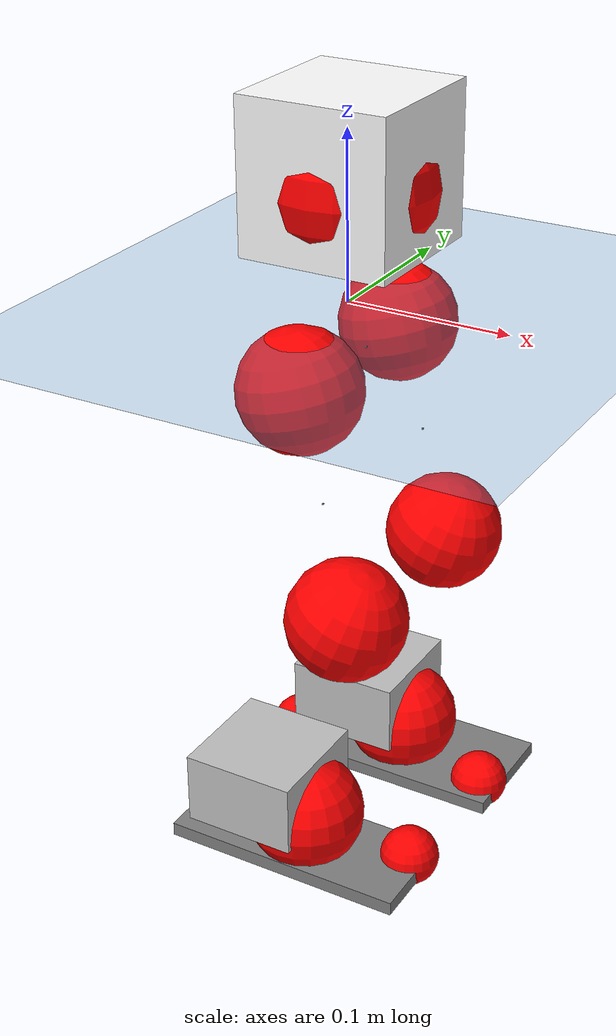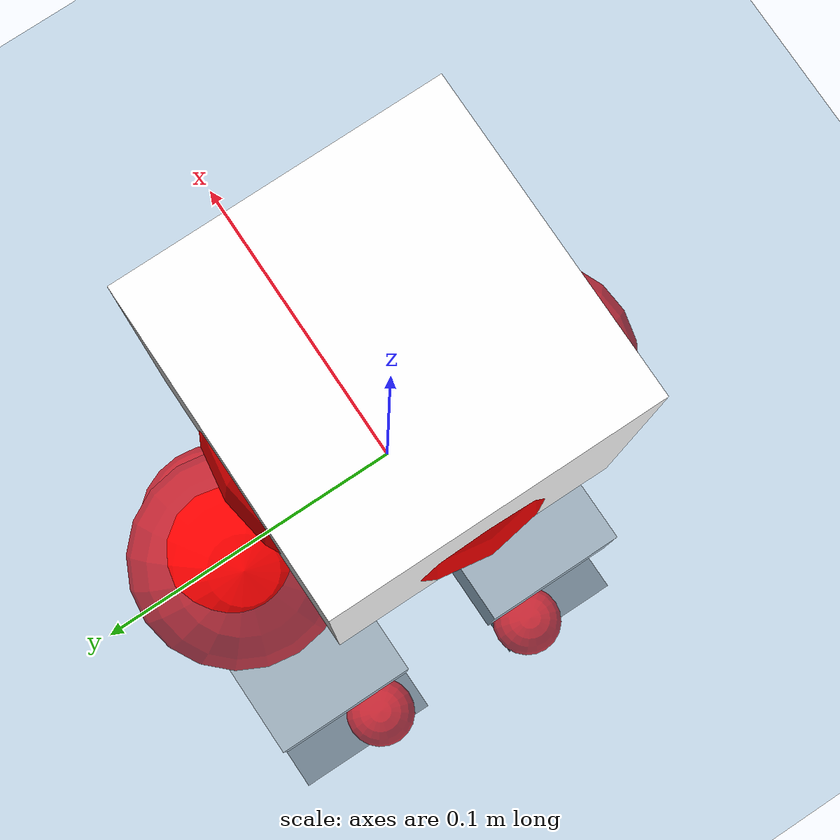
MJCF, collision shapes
<mujoco model="pi_12dof_release_v1">
  <compiler angle="radian" assetdir="assets" balanceinertia="true" inertiafromgeom="false"/>

  <option timestep="0.005" density="1.2" viscosity="2e-05"/>

  <size nkey="1"/>

  <visual>
    <quality shadowsize="8192"/>
    <map shadowclip="0.5"/>
  </visual>

  <default>
    <default class="/">
      <joint armature="0.01" damping="0.01" frictionloss="0.01"/>
      <geom contype="0" conaffinity="0" group="1" solref="-1000 -80"/>
      <site size="0.01 0.005 0.005" group="5"/>
      <general forcelimited="true" biastype="affine" gainprm="20" biasprm="0 -20 -0.5"/>
      <default class="foot">
        <geom size="0.0845 0.036 0.005" type="box" condim="6" group="4" priority="1" friction="0.9 0.2 0.2" solimp="0.015 1 0.005"/>
      </default>
      <default class="reward_collision_sphere">
        <geom group="5" rgba="1 0 0 1"/>
      </default>
    </default>
  </default>

  <asset>
    <texture type="skybox" colorspace="auto" name="//unnamed_texture_0" builtin="gradient" rgb1="0.95 0.95 0.95" rgb2="0.95 0.95 0.95" width="100" height="600"/>
    <texture type="2d" colorspace="auto" name="texplane" builtin="checker" rgb1="0.345 0.575 0.748" rgb2="0.345 0.575 0.748" markrgb="1 1 1" width="512" height="512"/>
    <material name="MatPlane" class="/" texture="texplane" texuniform="true" texrepeat="2 2" specular="0.9"/>
    <mesh name="baselink_1" class="/" file="baselink_1.STL"/>
    <mesh name="r_hip_pitch_link" class="/" file="r_hip_pitch_link.STL"/>
    <mesh name="r_hip_roll_link" class="/" file="r_hip_roll_link.STL"/>
    <mesh name="r_thigh_link" class="/" file="r_thigh_link.STL"/>
    <mesh name="r_calf_link" class="/" file="r_calf_link.STL"/>
    <mesh name="r_ankle_pitch_link" class="/" file="r_ankle_pitch_link.STL"/>
    <mesh name="r_ankle_roll_link" class="/" file="r_ankle_roll_link.STL"/>
    <mesh name="l_hip_pitch_link" class="/" file="l_hip_pitch_link.STL"/>
    <mesh name="l_hip_roll_link" class="/" file="l_hip_roll_link.STL"/>
    <mesh name="l_thigh_link" class="/" file="l_thigh_link.STL"/>
    <mesh name="l_calf_link" class="/" file="l_calf_link.STL"/>
    <mesh name="l_ankle_pitch_link" class="/" file="l_ankle_pitch_link.STL"/>
    <mesh name="l_ankle_roll_link" class="/" file="l_ankle_roll_link.STL"/>
  </asset>

  <worldbody>
    <geom name="floor" class="/" size="100 100 0.125" type="plane" group="0" material="MatPlane"/>
    <light name="toplight_shadow" class="/" pos="0 0 5" dir="0.0990148 0.0990148 -0.990148" type="directional" ambient="0.04 0.04 0.04" diffuse="0.55 0.55 0.55" specular="0.12 0.12 0.12"/>
    <light name="toplight_fill" class="/" pos="0 0 5" dir="0.0990148 0.0990148 -0.990148" type="directional" castshadow="false" ambient="0.04 0.04 0.04" diffuse="0.3 0.3 0.3" specular="0.08 0.08 0.08"/>
    <body name="trunk" pos="0.00260801 -0.000528753 0.000120743" quat="0.999999 -0.00115007 0.000224087 0.000419652">
      <inertial pos="-0.000325678 -0.00116571 0.0394289" quat="0.694637 0.0127768 0.0103706 0.719172" mass="1.52367" diaginertia="0.00918891 0.00201995 0.0035933"/>
      <joint name="//unnamed_joint_0" type="free"/>
      <geom name="//unnamed_geom_1" class="/" type="mesh" density="0" rgba="1 1 1 1" mesh="baselink_1"/>
      <geom name="//unnamed_geom_2" class="/" size="0.0451019 0.0451019 0.0451019" pos="0 0 0.0779531" type="box" rgba="1 1 1 1"/>
      <geom name="//unnamed_geom_3" class="reward_collision_sphere" size="0.0496121" pos="0 0 0.068209"/>
      <site name="imu" class="/" pos="-0.00225382 0.00191584 0.0120472" size="0.00902039"/>
      <camera name="track" class="/" pos="0 -1.48538 0" quat="0.707107 0.707107 0 0" mode="trackcom"/>
      <camera name="ego_camera" class="/" pos="0.0741761 0 0.175394" quat="-0.5 -0.5 0.5 0.5"/>
      <body name="r_hip_pitch_link" pos="-0.000165298 -0.0158813 -0.0320796" quat="0.992225 0.000162033 -0.12446 -0.000134857">
        <inertial pos="4.01486e-05 -0.0434855 -0.000153986" quat="-0.018713 0.70538 -0.0273281 0.708055" mass="0.268851" diaginertia="0.000104836 2.19537e-05 7.28637e-05"/>
        <joint name="r_hip_pitch_joint" class="/" pos="0 0 0" axis="0.00288246 -0.999978 0.0059236" range="-1.75034 1.24396" armature="0.00939422" damping="0.0232715" frictionloss="0.00975313"/>
        <geom name="//unnamed_geom_4" class="/" type="mesh" density="0" rgba="0.75294 0.75294 0.75294 1" mesh="r_hip_pitch_link"/>
        <geom name="//unnamed_geom_5" class="/" size="0.000451019 0.000451019 0.000451019" type="box" rgba="0.75294 0.75294 0.75294 1"/>
        <body name="r_hip_roll_link" pos="0.000576814 -0.0412611 0.000875117" quat="0.999999 0.000218307 -1.46682e-05 0.00100993">
          <inertial pos="0.000499547 -0.00128931 -0.0622088" quat="0.705938 -0.0794445 -0.0823725 0.698967" mass="0.277627" diaginertia="0.000310114 6.20096e-05 0.000114218"/>
          <joint name="r_hip_roll_joint" class="/" pos="0 0 0" axis="-0.999966 0.00110193 0.00812789" stiffness="0.00220435" range="-0.100118 0.466746" armature="0.00927717" damping="0" frictionloss="0.0099671"/>
          <geom name="//unnamed_geom_6" class="/" type="mesh" density="0" rgba="0.75294 0.75294 0.75294 1" mesh="r_hip_roll_link"/>
          <geom name="//unnamed_geom_7" class="/" size="0.000451019 0.000451019 0.000451019" type="box" rgba="0.75294 0.75294 0.75294 1"/>
          <geom name="//unnamed_geom_8" class="reward_collision_sphere" size="0.0360815"/>
          <body name="r_thigh_link" pos="-0.00174647 -0.0018296 -0.0668835" quat="1 -9.1019e-05 5.86586e-05 0.000389549">
            <inertial pos="-0.00165323 0.00104563 -0.0449978" quat="0.737032 0.67585 -0.00269556 0.00181922" mass="0.0826332" diaginertia="0.000121041 2.23683e-05 5.18633e-05"/>
            <joint name="r_thigh_joint" class="/" pos="0 0 0" axis="0.00219989 0.000192718 -0.999998" range="-0.339585 0.606863" armature="0.00876522" damping="2.6345e-05" frictionloss="0.00784514"/>
            <geom name="//unnamed_geom_9" class="/" type="mesh" density="0" rgba="0.75294 0.75294 0.75294 1" mesh="r_thigh_link"/>
            <geom name="//unnamed_geom_10" class="/" size="0.000451019 0.000451019 0.000451019" type="box" rgba="0.75294 0.75294 0.75294 1"/>
            <body name="r_calf_link" pos="-0.00169043 -0.00192576 -0.0712178" quat="0.947369 0.000102662 0.320144 -0.000177815">
              <inertial pos="-0.000426697 -0.00299809 -0.0676673" quat="0.999988 0.00360213 -0.000320829 -0.00341281" mass="0.591287" diaginertia="0.00324133 0.000785015 0.000150357"/>
              <joint name="r_calf_joint" class="/" pos="0 0 0" axis="-0.00229576 -0.999964 -0.00818094" range="-1.59871 0.644335" armature="0.00920606" damping="0.00521514" frictionloss="0.00980214"/>
              <geom name="//unnamed_geom_11" class="/" type="mesh" density="0" rgba="0.75294 0.75294 0.75294 1" mesh="r_calf_link"/>
              <geom name="//unnamed_geom_12" class="/" size="0.000451019 0.000451019 0.000451019" type="box" rgba="0.75294 0.75294 0.75294 1"/>
              <geom name="//unnamed_geom_13" class="reward_collision_sphere" size="0.0360815"/>
              <body name="r_ankle_pitch_link" pos="2.5754e-05 -0.00208289 -0.136914" quat="0.980077 0.00020428 -0.198617 -0.000139323">
                <inertial pos="0.00518345 0.000941354 -0.000559025" quat="-0.0022063 0.707206 0.000991957 0.707003" mass="0.130634" diaginertia="0.000289899 5.07401e-05 0.000108057"/>
                <joint name="r_ankle_pitch_joint" class="/" pos="0 0 0" axis="0.0032796 -0.999933 0.011096" range="-1.30344 0.499402" armature="0.00923992" damping="0" frictionloss="0.00926388"/>
                <geom name="//unnamed_geom_14" class="/" type="mesh" density="0" rgba="0.75294 0.75294 0.75294 1" mesh="r_ankle_pitch_link"/>
                <geom name="//unnamed_geom_15" class="/" size="0.0351795 0.0360815 0.022551" type="box" rgba="0.75294 0.75294 0.75294 1"/>
                <body name="r_ankle_roll_link" pos="0.0746715 0.00115387 0.000609297" quat="1 -6.4717e-05 3.97888e-06 2.43905e-05">
                  <inertial pos="-0.0233167 0.000696812 -0.0145002" quat="0.550133 0.435394 0.436661 0.563128" mass="0.377773" diaginertia="0.001069 0.000232447 0.000243707"/>
                  <joint name="r_ankle_roll_joint" class="/" pos="0 0 0" axis="-0.999904 -0.0131645 0.00432687" range="-0.199829 0.162921" armature="0.0101522" damping="0.0120728" frictionloss="0.00917339"/>
                  <geom name="//unnamed_geom_16" class="/" type="mesh" density="0" rgba="0.75294 0.75294 0.75294 1" mesh="r_ankle_roll_link"/>
                  <geom name="//unnamed_geom_17" class="/" type="mesh" rgba="0.75294 0.75294 0.75294 1" mesh="r_ankle_roll_link"/>
                  <geom name="right_foot" class="foot" size="0.0766347 0.0308876 0.00434181" pos="-0.0504397 0 -0.0428742"/>
                  <geom name="//unnamed_geom_19" class="reward_collision_sphere" size="0.0360815" pos="-0.0494507 0 -0.0194883"/>
                  <geom name="//unnamed_geom_20" class="reward_collision_sphere" size="0.0180408" pos="0.0148352 0.0148538 -0.0389765"/>
                  <geom name="//unnamed_geom_21" class="reward_collision_sphere" size="0.0180408" pos="-0.118682 0.0148538 -0.0389765"/>
                  <site name="right_foot" class="foot" pos="-0.0504397 0 -0.0428742" size="0.00902039"/>
                </body>
              </body>
            </body>
          </body>
        </body>
      </body>
      <body name="l_hip_pitch_link" pos="-0.000100895 0.0171261 -0.0332112" quat="0.992214 -3.87741e-05 -0.124542 0.000198722">
        <inertial pos="0.000131471 0.0424366 -0.00167625" quat="-0.0462655 0.706079 0.0399782 0.705488" mass="0.291767" diaginertia="0.000120683 2.34364e-05 9.01507e-05"/>
        <joint name="l_hip_pitch_joint" class="/" pos="0 0 0" axis="-0.0124293 0.999911 -0.00488788" range="-1.26421 1.7566" armature="0.00893559" damping="0.00949265" frictionloss="0.00910197"/>
        <geom name="//unnamed_geom_22" class="/" type="mesh" density="0" rgba="0.75294 0.75294 0.75294 1" mesh="l_hip_pitch_link"/>
        <geom name="//unnamed_geom_23" class="/" size="0.000451019 0.000451019 0.000451019" type="box" rgba="0.75294 0.75294 0.75294 1"/>
        <body name="l_hip_roll_link" pos="0.000537176 0.0394197 0.0026706" quat="1 -8.71471e-06 5.46865e-06 1.94554e-05">
          <inertial pos="-0.00113122 -7.29688e-05 -0.0601733" quat="0.698663 -0.0788799 -0.0760493 0.707011" mass="0.290422" diaginertia="0.000313053 6.1491e-05 0.000112948"/>
          <joint name="l_hip_roll_joint" class="/" pos="0 0 0" axis="-0.999995 0.00122442 0.00280253" range="-0.499527 0.15481" armature="0.0092407" damping="0.00410893" frictionloss="0.00941372"/>
          <geom name="//unnamed_geom_24" class="/" type="mesh" density="0" rgba="0.75294 0.75294 0.75294 1" mesh="l_hip_roll_link"/>
          <geom name="//unnamed_geom_25" class="/" size="0.000451019 0.000451019 0.000451019" type="box" rgba="0.75294 0.75294 0.75294 1"/>
          <geom name="//unnamed_geom_26" class="reward_collision_sphere" size="0.0360815"/>
          <body name="l_thigh_link" pos="0.000169133 0.000185655 -0.069737" quat="1 7.37484e-05 0.000301252 -0.000103214">
            <inertial pos="0.00127205 0.00117876 -0.0463703" quat="0.674806 0.737995 -0.00039741 -0.000954273" mass="0.0817457" diaginertia="0.000116313 2.12878e-05 4.86515e-05"/>
            <joint name="l_thigh_joint" class="/" pos="0 0 0" axis="-0.00246519 -0.000796657 -0.999997" range="-0.592901 0.32483" armature="0.00905944" damping="0" frictionloss="0.00912487"/>
            <geom name="//unnamed_geom_27" class="/" type="mesh" density="0" rgba="0.75294 0.75294 0.75294 1" mesh="l_thigh_link"/>
            <geom name="//unnamed_geom_28" class="/" size="0.000451019 0.000451019 0.000451019" type="box" rgba="0.75294 0.75294 0.75294 1"/>
            <body name="l_calf_link" pos="-0.000552727 0.000142237 -0.0675026" quat="0.94805 0.000337201 0.318121 7.9382e-07">
              <inertial pos="0.00295584 0.00359682 -0.0707818" quat="0.99995 0.00549572 0.0062836 0.00558983" mass="0.597335" diaginertia="0.00334234 0.000788937 0.000152884"/>
              <joint name="l_calf_joint" class="/" pos="0 0 0" axis="0.000412858 0.999998 0.001686" stiffness="0.000632592" range="-0.645729 1.64054" armature="0.00859729" damping="0.00924762" frictionloss="0.0080381"/>
              <geom name="//unnamed_geom_29" class="/" type="mesh" density="0" rgba="0.75294 0.75294 0.75294 1" mesh="l_calf_link"/>
              <geom name="//unnamed_geom_30" class="/" size="0.000451019 0.000451019 0.000451019" type="box" rgba="0.75294 0.75294 0.75294 1"/>
              <geom name="//unnamed_geom_31" class="reward_collision_sphere" size="0.0360815"/>
              <body name="l_ankle_pitch_link" pos="0.00125593 0.000305212 -0.138875" quat="0.980056 5.18878e-05 -0.19872 -0.000121953">
                <inertial pos="0.00522139 -0.000862005 7.32217e-05" quat="-0.00334477 0.706551 0.00175313 0.707652" mass="0.125656" diaginertia="0.000293231 5.08443e-05 0.00010533"/>
                <joint name="l_ankle_pitch_joint" class="/" pos="0 0 0" axis="-4.05132e-05 0.999997 0.00262115" range="-0.506021 1.30682" armature="0.00910529" damping="0.0112528" frictionloss="0.0088695"/>
                <geom name="//unnamed_geom_32" class="/" type="mesh" density="0" rgba="0.75294 0.75294 0.75294 1" mesh="l_ankle_pitch_link"/>
                <geom name="//unnamed_geom_33" class="/" size="0.0351795 0.0360815 0.022551" type="box" rgba="0.75294 0.75294 0.75294 1"/>
                <body name="l_ankle_roll_link" pos="0.0742507 0.000885123 2.7827e-05" quat="1 -6.63571e-05 -4.8397e-05 -9.23692e-05">
                  <inertial pos="-0.0260448 3.92722e-05 -0.0145212" quat="0.559034 0.429805 0.435372 0.559643" mass="0.377345" diaginertia="0.00105866 0.000232935 0.000254585"/>
                  <joint name="l_ankle_roll_joint" class="/" pos="0 0 0" axis="-0.999927 0.00441419 0.0112598" range="-0.157703 0.14884" armature="0.00941087" damping="0.0170582" frictionloss="0.00928502"/>
                  <geom name="//unnamed_geom_34" class="/" type="mesh" density="0" rgba="0.75294 0.75294 0.75294 1" mesh="l_ankle_roll_link"/>
                  <geom name="//unnamed_geom_35" class="/" type="mesh" rgba="0.75294 0.75294 0.75294 1" mesh="l_ankle_roll_link"/>
                  <geom name="left_foot" class="foot" size="0.0793432 0.0372516 0.00407541" pos="-0.0504397 0 -0.0428742"/>
                  <geom name="//unnamed_geom_37" class="reward_collision_sphere" size="0.0360815" pos="-0.0494507 0 -0.0194883"/>
                  <geom name="//unnamed_geom_38" class="reward_collision_sphere" size="0.0180408" pos="0.0148352 -0.0148538 -0.0389765"/>
                  <geom name="//unnamed_geom_39" class="reward_collision_sphere" size="0.0180408" pos="-0.118682 -0.0148538 -0.0389765"/>
                  <site name="left_foot" class="foot" pos="-0.0504397 0 -0.0428742" size="0.00902039"/>
                </body>
              </body>
            </body>
          </body>
        </body>
      </body>
    </body>
  </worldbody>

  <contact>
    <pair class="/" geom1="floor" geom2="right_foot" name="//unnamed_contact_1"/>
    <pair class="/" geom1="floor" geom2="left_foot" name="//unnamed_contact_0"/>
  </contact>

  <actuator>
    <general name="r_hip_pitch_joint" class="/" joint="r_hip_pitch_joint" forcerange="-18.9638 18.9638" gainprm="18.341" biasprm="0 -18.341 -0.452409"/>
    <general name="r_hip_roll_joint" class="/" joint="r_hip_roll_joint" forcerange="-19.5096 19.5096" gainprm="18.341" biasprm="0 -18.341 -0.452409"/>
    <general name="r_thigh_joint" class="/" joint="r_thigh_joint" forcerange="-19.2694 19.2694" gainprm="18.341" biasprm="0 -18.341 -0.452409"/>
    <general name="r_calf_joint" class="/" joint="r_calf_joint" forcerange="-20.7745 20.7745" gainprm="18.341" biasprm="0 -18.341 -0.452409"/>
    <general name="r_ankle_pitch_joint" class="/" joint="r_ankle_pitch_joint" forcerange="-18.3997 18.3997" gainprm="18.341" biasprm="0 -18.341 -0.452409"/>
    <general name="r_ankle_roll_joint" class="/" joint="r_ankle_roll_joint" forcerange="-17.2085 17.2085" gainprm="18.341" biasprm="0 -18.341 -0.452409"/>
    <general name="l_hip_pitch_joint" class="/" joint="l_hip_pitch_joint" forcerange="-19.1171 19.1171" gainprm="18.341" biasprm="0 -18.341 -0.452409"/>
    <general name="l_hip_roll_joint" class="/" joint="l_hip_roll_joint" forcerange="-18.7523 18.7523" gainprm="18.341" biasprm="0 -18.341 -0.452409"/>
    <general name="l_thigh_joint" class="/" joint="l_thigh_joint" forcerange="-18.9524 18.9524" gainprm="18.341" biasprm="0 -18.341 -0.452409"/>
    <general name="l_calf_joint" class="/" joint="l_calf_joint" forcerange="-18.6841 18.6841" gainprm="18.341" biasprm="0 -18.341 -0.452409"/>
    <general name="l_ankle_pitch_joint" class="/" joint="l_ankle_pitch_joint" forcerange="-19.075 19.075" gainprm="18.341" biasprm="0 -18.341 -0.452409"/>
    <general name="l_ankle_roll_joint" class="/" joint="l_ankle_roll_joint" forcerange="-19.1669 19.1669" gainprm="18.341" biasprm="0 -18.341 -0.452409"/>
  </actuator>

  <sensor>
    <gyro site="imu" name="imu_angular_velocity"/>
    <velocimeter site="imu" name="imu_linear_velocity"/>
    <framelinvel objtype="site" objname="left_foot" name="left_foot_global_linear_velocity"/>
    <framelinvel objtype="site" objname="right_foot" name="right_foot_global_linear_velocity"/>
  </sensor>

  <keyframe>
    <key name="home" qpos="0 0 0.291 1 0 0 0 0.4 0 0 -0.8 0.4 0 -0.4 0 0 0.8 -0.4 0"/>
  </keyframe>
</mujoco>
